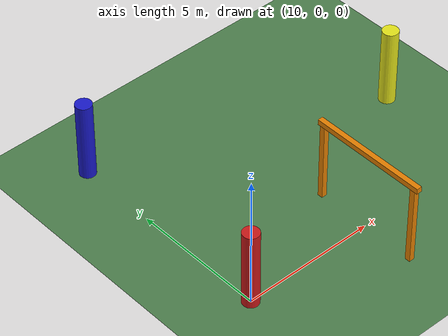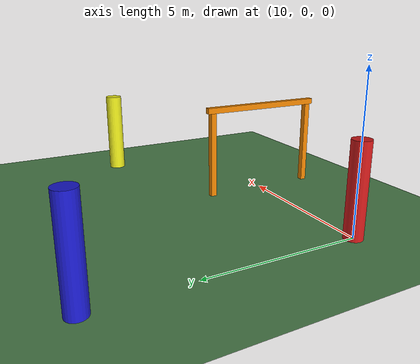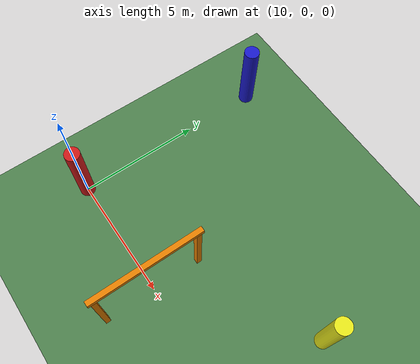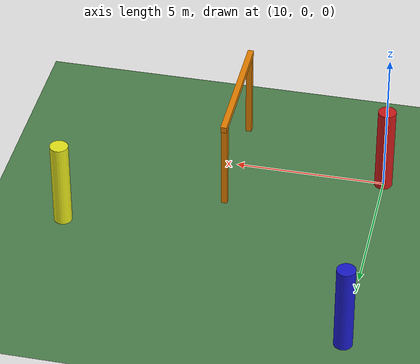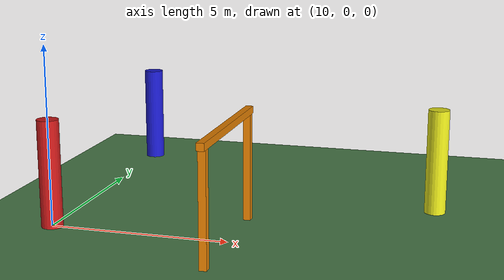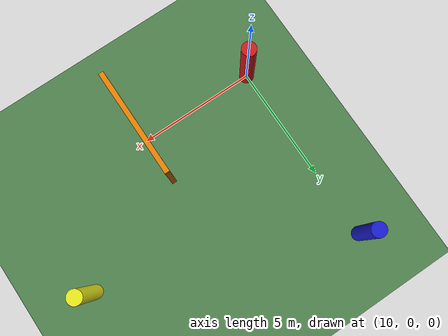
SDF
<sdf version="1.9">
 <world name="fpv_demo">
  <spherical_coordinates>
   <surface_model>EARTH_WGS84</surface_model>
   <world_frame_orientation>ENU</world_frame_orientation>
   <latitude_deg>40.46350</latitude_deg>
   <longitude_deg>-79.51825</longitude_deg>
   <elevation>0</elevation>
   <heading_deg>0</heading_deg>
  </spherical_coordinates>
  <physics name="realtime" type="ignored">
   <real_time_factor>1</real_time_factor>
   <max_step_size>0.004</max_step_size>
  </physics>
  <plugin filename="gz-sim-physics-system" name="gz::sim::systems::Physics"/>
  <plugin filename="gz-sim-sensors-system" name="gz::sim::systems::Sensors">
   <render_engine>ogre2</render_engine>
  </plugin>
  <plugin filename="gz-sim-user-commands-system" name="gz::sim::systems::UserCommands"/>
  <plugin filename="gz-sim-scene-broadcaster-system" name="gz::sim::systems::SceneBroadcaster"/>
  <plugin filename="gz-sim-imu-system" name="gz::sim::systems::Imu"/>
  <light name="sun" type="directional">
   <pose>0 0 10 0 0 0</pose>
   <diffuse>0.8 0.8 0.8 1</diffuse>
   <specular>0.2 0.2 0.2 1</specular>
   <attenuation>
    <range>1000</range>
    <constant>0.9</constant>
    <linear>0.01</linear>
    <quadratic>0.001</quadratic>
   </attenuation>
   <direction>-0.5 0.1 -0.9</direction>
  </light>
  <model name="ground_plane">
   <static>true</static>
   <link name="link">
    <collision name="collision">
     <geometry><plane><normal>0 0 1</normal><size>5000 5000</size></plane></geometry>
     <surface><friction><ode><mu>1</mu><mu2>1</mu2></ode></friction></surface>
    </collision>
    <visual name="grass">
     <pose>0 0 -0.1 0 0 0</pose>
     <cast_shadows>false</cast_shadows>
     <geometry><plane><normal>0 0 1</normal><size>5000 5000</size></plane></geometry>
     <material><ambient>0.3 0.5 0.3 1</ambient><diffuse>0.3 0.5 0.3 1</diffuse></material>
    </visual>
   </link>
  </model>
  <model name="pillar_red">
   <static>true</static>
   <pose>10 0 1.5 0 0 0</pose>
   <link name="link">
    <visual name="visual">
     <geometry><cylinder><radius>0.3</radius><length>3.0</length></cylinder></geometry>
     <material><ambient>0.8 0.1 0.1 1</ambient><diffuse>0.8 0.1 0.1 1</diffuse></material>
    </visual>
    <collision name="collision">
     <geometry><cylinder><radius>0.3</radius><length>3.0</length></cylinder></geometry>
    </collision>
   </link>
  </model>
  <model name="pillar_blue">
   <static>true</static>
   <pose>10 8 1.5 0 0 0</pose>
   <link name="link">
    <visual name="visual">
     <geometry><cylinder><radius>0.3</radius><length>3.0</length></cylinder></geometry>
     <material><ambient>0.1 0.1 0.8 1</ambient><diffuse>0.1 0.1 0.8 1</diffuse></material>
    </visual>
    <collision name="collision">
     <geometry><cylinder><radius>0.3</radius><length>3.0</length></cylinder></geometry>
    </collision>
   </link>
  </model>
  <model name="pillar_yellow">
   <static>true</static>
   <pose>20 4 1.5 0 0 0</pose>
   <link name="link">
    <visual name="visual">
     <geometry><cylinder><radius>0.3</radius><length>3.0</length></cylinder></geometry>
     <material><ambient>0.9 0.9 0.1 1</ambient><diffuse>0.9 0.9 0.1 1</diffuse></material>
    </visual>
    <collision name="collision">
     <geometry><cylinder><radius>0.3</radius><length>3.0</length></cylinder></geometry>
    </collision>
   </link>
  </model>
  <model name="gate_left">
   <static>true</static>
   <pose>15 -2 1.5 0 0 0</pose>
   <link name="link">
    <visual name="visual">
     <geometry><box><size>0.2 0.2 3.0</size></box></geometry>
     <material><ambient>0.9 0.5 0.0 1</ambient><diffuse>0.9 0.5 0.0 1</diffuse></material>
    </visual>
    <collision name="collision"><geometry><box><size>0.2 0.2 3.0</size></box></geometry></collision>
   </link>
  </model>
  <model name="gate_right">
   <static>true</static>
   <pose>15 2 1.5 0 0 0</pose>
   <link name="link">
    <visual name="visual">
     <geometry><box><size>0.2 0.2 3.0</size></box></geometry>
     <material><ambient>0.9 0.5 0.0 1</ambient><diffuse>0.9 0.5 0.0 1</diffuse></material>
    </visual>
    <collision name="collision"><geometry><box><size>0.2 0.2 3.0</size></box></geometry></collision>
   </link>
  </model>
  <model name="gate_top">
   <static>true</static>
   <pose>15 0 3.1 0 0 0</pose>
   <link name="link">
    <visual name="visual">
     <geometry><box><size>0.2 4.4 0.2</size></box></geometry>
     <material><ambient>0.9 0.5 0.0 1</ambient><diffuse>0.9 0.5 0.0 1</diffuse></material>
    </visual>
    <collision name="collision"><geometry><box><size>0.2 4.4 0.2</size></box></geometry></collision>
   </link>
  </model>
 </world>
</sdf>
